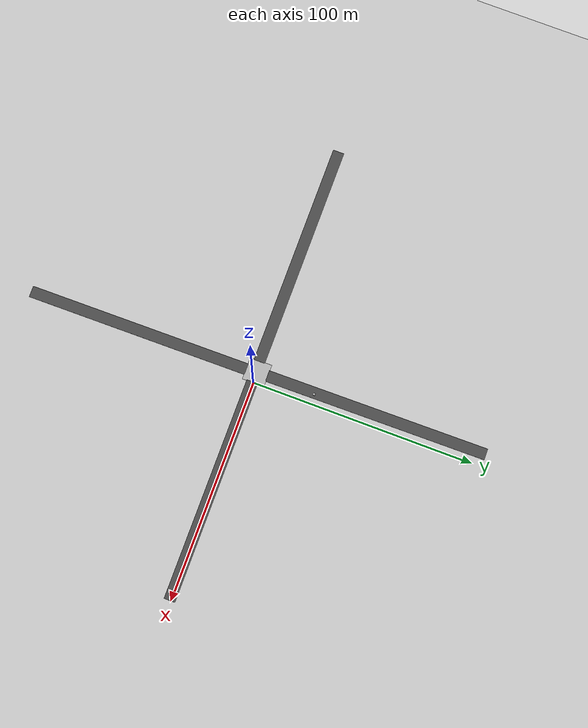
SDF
<sdf version="1.5">
 <world name="default">
  <model name="ground_plane">
   <static>1</static>
   <link name="link">
    <collision name="collision">
     <geometry><plane><normal>0 0 1</normal><size>100 100</size></plane></geometry>
     <surface><friction><ode><mu>100</mu><mu2>50</mu2></ode></friction></surface>
    </collision>
    <visual name="visual">
     <cast_shadows>0</cast_shadows>
     <geometry><plane><normal>0 0 1</normal><size>100 100</size></plane></geometry>
     <material>
      <script><uri>file://media/materials/scripts/gazebo.material</uri><name>Gazebo/Grey</name></script>
     </material>
    </visual>
   </link>
  </model>
  <light name="sun" type="directional">
   <pose>0 0 10 0 -0 0</pose>
   <diffuse>0.8 0.8 0.8 1</diffuse>
   <specular>0.2 0.2 0.2 1</specular>
   <attenuation>
    <range>1000</range>
    <constant>0.9</constant>
    <linear>0.01</linear>
    <quadratic>0.001</quadratic>
   </attenuation>
   <direction>-0.5 0.1 -0.9</direction>
  </light>
  <model name="box">
   <pose>-4.34584 26.2856 -0.010386 1.02597 1.54428 1.0169</pose>
   <link name="link">
    <collision name="collision"><geometry><box><size>0.01 0.01 0.01</size></box></geometry></collision>
    <visual name="visual"><geometry><box><size>1 1 1</size></box></geometry></visual>
    <inertial>
     <inertia><ixx>1</ixx><ixy>0</ixy><ixz>0</ixz><iyy>1</iyy><iyz>0</iyz><izz>1</izz></inertia>
     <mass>1</mass>
    </inertial>
   </link>
   <plugin name="model_push" filename="libmodel_push.so"/>
  </model>
  <model name="road_2_0_1">
   <pose>49.7677 -0.692316 0.05 0 -0 0</pose>
   <static>1</static>
   <link name="link">
    <collision name="collision"><geometry><box><size>100 5 0.1</size></box></geometry></collision>
    <visual name="visual">
     <cast_shadows>0</cast_shadows>
     <geometry><box><size>100 5 0.1</size></box></geometry>
     <material>
      <script>
       <uri>models/comps_road/materials/scripts</uri>
       <uri>models/comps_road/materials/textures</uri>
       <name>comps_road</name>
      </script>
     </material>
    </visual>
   </link>
  </model>
  <physics name="default_physics" default="0" type="ode">
   <max_step_size>0.001</max_step_size>
   <real_time_factor>1</real_time_factor>
   <real_time_update_rate>1000</real_time_update_rate>
   <gravity>0 0 -9.8</gravity>
   <magnetic_field>6e-06 2.3e-05 -4.2e-05</magnetic_field>
  </physics>
  <scene><ambient>0.4 0.4 0.4 1</ambient><background>0.7 0.7 0.7 1</background><shadows>1</shadows></scene>
  <audio><device>default</device></audio>
  <spherical_coordinates>
   <surface_model>EARTH_WGS84</surface_model>
   <latitude_deg>0</latitude_deg>
   <longitude_deg>0</longitude_deg>
   <elevation>0</elevation>
   <heading_deg>0</heading_deg>
  </spherical_coordinates>
  <model name="intersection_1_1">
   <pose>-4.86882 -0.177727 0.03324 0 -0 0</pose>
   <static>1</static>
   <link name="link">
    <collision name="collision"><geometry><box><size>10 10 0.1</size></box></geometry></collision>
    <visual name="visual">
     <cast_shadows>0</cast_shadows>
     <geometry><box><size>10 10 0.1</size></box></geometry>
     <material>
      <script>
       <uri>models/intersection/materials/scripts</uri>
       <uri>models/intersection/materials/textures</uri>
       <name>intersection</name>
      </script>
     </material>
    </visual>
   </link>
  </model>
  <model name="road_2_0_1_clone">
   <pose>-59.5209 -0.878431 0.05 0 -0 0</pose>
   <static>1</static>
   <link name="link">
    <collision name="collision"><geometry><box><size>100 5 0.1</size></box></geometry></collision>
    <visual name="visual">
     <cast_shadows>0</cast_shadows>
     <geometry><box><size>100 5 0.1</size></box></geometry>
     <material>
      <script>
       <uri>models/comps_road/materials/scripts</uri>
       <uri>models/comps_road/materials/textures</uri>
       <name>comps_road</name>
      </script>
     </material>
    </visual>
   </link>
  </model>
  <model name="road_2_0_1_clone_0">
   <pose>-5.28432 54.5613 0.05 -0.007408 -0 -1.56181</pose>
   <static>1</static>
   <link name="link">
    <collision name="collision"><geometry><box><size>100 5 0.1</size></box></geometry></collision>
    <visual name="visual">
     <cast_shadows>0</cast_shadows>
     <geometry><box><size>100 5 0.1</size></box></geometry>
     <material>
      <script>
       <uri>models/comps_road/materials/scripts</uri>
       <uri>models/comps_road/materials/textures</uri>
       <name>comps_road</name>
      </script>
     </material>
    </visual>
   </link>
  </model>
  <model name="road_2_0_1_clone_1">
   <pose>-4.06568 -54.9704 0.05 0 0 -1.56379</pose>
   <static>1</static>
   <link name="link">
    <collision name="collision"><geometry><box><size>100 5 0.1</size></box></geometry></collision>
    <visual name="visual">
     <cast_shadows>0</cast_shadows>
     <geometry><box><size>100 5 0.1</size></box></geometry>
     <material>
      <script>
       <uri>models/comps_road/materials/scripts</uri>
       <uri>models/comps_road/materials/textures</uri>
       <name>comps_road</name>
      </script>
     </material>
    </visual>
   </link>
  </model>
 </world>
</sdf>
